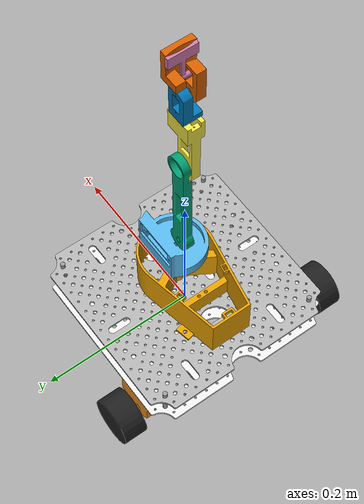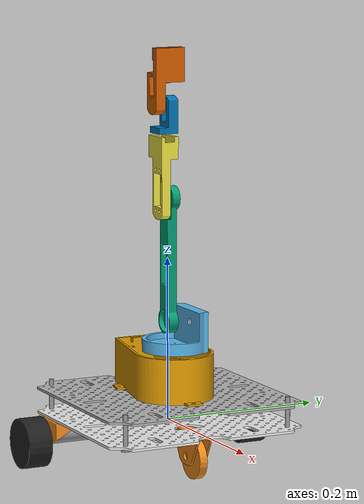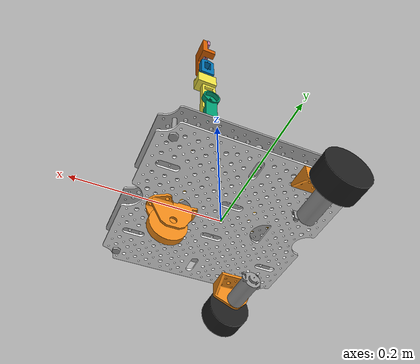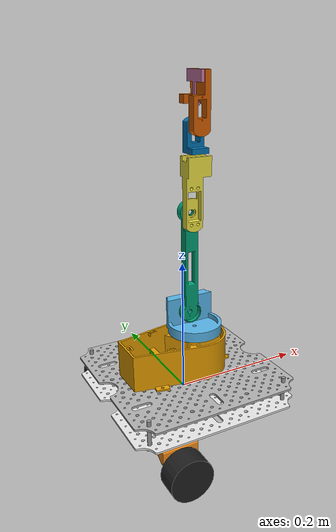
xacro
<?xml version="1.0" encoding="utf-8"?>
<robot name="billy_arm" xmlns:xacro="http://www.ros.org/wiki/xacro">

  <!-- BGN - Include -->
  <xacro:include filename="$(find billy_arm)/config/robot_param.xacro" />
  <xacro:include filename="$(find billy_arm)/config/billy_links_joints.xacro" />
  <!-- END - Include -->

    <!-- Joint, link and color of components -->

    <link name="base_footprint"/>
    <joint name="base_joint" type="fixed">
      <origin xyz="0 0 0" rpy="0 0 0" />
      <parent link="base_footprint"/>
      <child link="base_link"/>
    </joint>

    <link name="odom"/>
    <joint name="odom_joint" type="fixed">
      <origin xyz="0 0 0" rpy="0 0 0" />
      <parent link="odom"/>
      <child link="base_footprint"/>
    </joint>

    <link name="base_link">
      <visual>
        <geometry>
          <mesh scale="0.001 0.001 0.001" filename="package://billy_description/meshes/TurtlebotBilly_New_Stage.stl"/>
        </geometry>
        <origin xyz="0 0 0" rpy="0 0 1.57"/>
      </visual>
      <collision>
        <geometry>
          <mesh scale="0.001 0.001 0.001" filename="package://billy_description/meshes/TurtlebotBilly_New_Stage.stl"/>
        </geometry>
        <origin xyz="0 0 0" rpy="0 0 1.57"/>
      </collision>
      <inertial>
        <origin xyz="0.0 0 0"/>
        <mass value="10.0"/>
        <inertia ixx="0.01" ixy="0.0" ixz="0.0"
                 iyy="0.01" iyz="0.0"
                 izz="0.03"/>
      </inertial>
    </link>
    <gazebo reference="base_link">
      <material>Gazebo/White</material>
    </gazebo>

    <joint name="stand_1_joint" type="fixed">
      <origin xyz="0.108 0.108 -0.005" rpy="0 0 0" />
      <parent link="base_link"/>
      <child link="stand_1_link" />
    </joint>
    <link name="stand_1_link">
      <visual>
        <geometry>
         <mesh scale="0.001 0.001 0.001" filename="package://billy_description/meshes/VisM6x40.stl"/>
        </geometry>
        <origin xyz="0 0 0" rpy="0 0 0" />
      </visual>
      <collision>
        <geometry>
         <mesh scale="0.001 0.001 0.001" filename="package://billy_description/meshes/VisM6x40.stl"/>
        </geometry>
        <origin xyz="0 0 0" rpy="0 0 0" />
      </collision>
    </link>
    <gazebo reference="stand_1_link">
      <material>Gazebo/Grey</material>
    </gazebo>

    <joint name="stand_2_joint" type="fixed">
      <origin xyz="-0.108 0.108 -0.005" rpy="0 0 0" />
      <parent link="base_link"/>
      <child link="stand_2_link" />
    </joint>
    <link name="stand_2_link">
      <visual>
        <geometry>
         <mesh scale="0.001 0.001 0.001" filename="package://billy_description/meshes/VisM6x40.stl"/>
        </geometry>
        <origin xyz="0 0 0" rpy="0 0 0" />
      </visual>
      <collision>
        <geometry>
         <mesh scale="0.001 0.001 0.001" filename="package://billy_description/meshes/VisM6x40.stl"/>
        </geometry>
        <origin xyz="0 0 0" rpy="0 0 0" />
      </collision>
    </link>
    <gazebo reference="stand_2_link">
      <material>Gazebo/Grey</material>
    </gazebo>

    <joint name="stand_3_joint" type="fixed">
      <origin xyz="-0.108 -0.108 -0.005" rpy="0 0 0" />
      <parent link="base_link"/>
      <child link="stand_3_link" />
    </joint>
    <link name="stand_3_link">
      <visual>
        <geometry>
         <mesh scale="0.001 0.001 0.001" filename="package://billy_description/meshes/VisM6x40.stl"/>
        </geometry>
        <origin rpy="0 0 0" xyz="0 0 0.0"/>
      </visual>
      <collision>
        <geometry>
         <mesh scale="0.001 0.001 0.001" filename="package://billy_description/meshes/VisM6x40.stl"/>
        </geometry>
        <origin rpy="0 0 0" xyz="0 0 0.0"/>
      </collision>
    </link>
    <gazebo reference="stand_3_link">
      <material>Gazebo/Grey</material>
    </gazebo>

    <joint name="stand_4_joint" type="fixed">
      <origin xyz="0.108 -0.108 -0.005" rpy="0 0 0" />
      <parent link="base_link"/>
      <child link="stand_4_link" />
    </joint>
    <link name="stand_4_link">
      <visual>
        <geometry>
         <mesh scale="0.001 0.001 0.001" filename="package://billy_description/meshes/VisM6x40.stl"/>
        </geometry>
        <origin rpy="0 0 0" xyz="0 0 0.0"/>
      </visual>
      <collision>
        <geometry>
         <mesh scale="0.001 0.001 0.001" filename="package://billy_description/meshes/VisM6x40.stl"/>
        </geometry>
        <origin rpy="0 0 0" xyz="0 0 0.0"/>
      </collision>
    </link>
    <gazebo reference="stand_4_link">
      <material>Gazebo/Grey</material>
    </gazebo>

    <joint name="second_level_joint" type="fixed">
      <origin xyz="-0.108 -0.108 0.035" rpy="0 0 0" />
      <parent link="stand_1_link"/>
      <child link="second_level_link"/>
    </joint>
    <link name="second_level_link">
      <visual>
        <geometry>
          <mesh scale="0.001 0.001 0.001" filename="package://billy_description/meshes/TurtlebotBilly_New_Stage.stl"/>
        </geometry>
        <origin xyz="0 0 0" rpy="0 0 1.57"/>
      </visual>
      <collision>
        <geometry>
          <mesh scale="0.001 0.001 0.001" filename="package://billy_description/meshes/TurtlebotBilly_New_Stage.stl"/>
        </geometry>
        <origin xyz="0 0 0" rpy="0 0 1.57"/>
      </collision>
    </link>
    <gazebo reference="base_second_link">
      <material>Gazebo/White</material>
    </gazebo>

    <m_link name="${l00}"
            mass="1"
            ixx="17.667" ixy="0.0" ixz="0.0"
            iyy="17.6670" iyz="0.0"
            izz="17.6670"
            origin_rpy="1.5708 0 0" origin_xyz="0 0 0"
            scale_xyz="0.01 0.01 0.01"  pathfile="package://billy_description/meshes/Base_new.stl"/>

    <joint name="second_level_link__${l00}" type="fixed">
      <origin xyz="-0.05 0 0" rpy="0 0 1.57"/>
      <parent link="second_level_link"/>
      <child link="${l00}"/>
    </joint>

    <m_joint name="${l00}__${l01}" type="revolute"
           axis_xyz="0 0 1"
           limit_e="1000" limit_l="-3.14" limit_u="3.14" limit_v="0.5"
           origin_rpy="0 0 0" origin_xyz="0 -0.07 0.06"
           parent="${l00}" child="${l01}"/>

    <transmission name="trans_${l00}__${l01}">
      <type>transmission_interface/SimpleTransmission</type>
      <joint name="${l00}__${l01}">
        <hardwareInterface>hardware_interface/EffortJointInterface</hardwareInterface>
      </joint>
      <actuator name="motor_${l00}__${l01}">
        <hardwareInterface>hardware_interface/EffortJointInterface</hardwareInterface>
        <mechanicalReduction>1</mechanicalReduction>
      </actuator>
    </transmission>

    <m_link name="${l01}"
            mass="0.7633"
            ixx="1.3235" ixy="0.0" ixz="0.0"
            iyy="1.235" iyz="0.0"
            izz="1.3235"
            origin_rpy="1.5708 0 1.5708" origin_xyz="0 0 0"
            scale_xyz="0.01 0.01 0.01"  pathfile="package://billy_description/meshes/Turning_mount.stl"/>

  <m_joint name="${l01}__${l02}" type="revolute"
           axis_xyz="0 0 1"
           limit_e="1000" limit_l="-2.8" limit_u="2.8" limit_v="0.5"
           origin_rpy="1.5708 1.5708 -1.5708" origin_xyz="-0.005 0.01 0.035"
           parent="${l01}" child="${l02}"/>

    <transmission name="trans_${l01}__${l02}">
      <type>transmission_interface/SimpleTransmission</type>
      <joint name="${l01}__${l02}">
        <hardwareInterface>hardware_interface/EffortJointInterface</hardwareInterface>
      </joint>
      <actuator name="motor_${l01}__${l02}">
        <hardwareInterface>hardware_interface/EffortJointInterface</hardwareInterface>*
        <mechanicalReduction>1</mechanicalReduction>
      </actuator>
    </transmission>

    <m_link name="${l02}"
            mass="0.7906"
            ixx="1.2679" ixy="0.0" ixz="0.0"
            iyy="1.2679" iyz="0.0"
            izz="0.0651"
            origin_rpy="0 0 0 " origin_xyz="-0.150 0 0"
            scale_xyz="0.01 0.01 0.01"  pathfile="package://billy_description/meshes/Link1.stl"/>

    <m_joint name="${l02}__${l03}" type="revolute"
           axis_xyz="1 0 0"
           limit_e="100" limit_l="-3.14" limit_u="3.14" limit_v="0.25"
           origin_rpy="1.5708 -1.5708 1.5708" origin_xyz="-0.15 0 0.002"
           parent="${l02}" child="${l03}"/>

    <transmission name="trans_${l02}__${l03}">
      <type>transmission_interface/SimpleTransmission</type>
      <joint name="${l02}__${l03}">
        <hardwareInterface>hardware_interface/EffortJointInterface</hardwareInterface>
      </joint>
      <actuator name="motor_${l02}__${l03}">
        <hardwareInterface>hardware_interface/EffortJointInterface</hardwareInterface>*
        <mechanicalReduction>1</mechanicalReduction>
      </actuator>
    </transmission>

    <m_link name="${l03}"
            mass="0.5"
            ixx="0.2679" ixy="0.0" ixz="0.0"
            iyy="0.2679" iyz="0.0"
            izz="0.0651"
            origin_rpy="0 0 0" origin_xyz="-0.0002 -0.02 -0.07"
            scale_xyz="0.01 0.01 0.01"  pathfile="package://billy_description/meshes/Link3_section_1.stl"/>

    <m_joint name="${l03}__${l04}" type="revolute"
           axis_xyz="0 0 1"
           limit_e="100" limit_l="-3.14" limit_u="3.14" limit_v="0.25"
           origin_rpy="0 0 0" origin_xyz="0 -0.005 -0.075"
           parent="${l03}" child="${l04}"/>

   <transmission name="trans_${l03}__${l04}">
      <type>transmission_interface/SimpleTransmission</type>
      <joint name="${l03}__${l04}">
        <hardwareInterface>hardware_interface/EffortJointInterface</hardwareInterface>
      </joint>
      <actuator name="motor_${l03}__${l04}">
        <hardwareInterface>hardware_interface/EffortJointInterface</hardwareInterface>*
        <mechanicalReduction>1</mechanicalReduction>
      </actuator>
    </transmission>

    <m_link name="${l04}"
            mass="0.5"
            ixx="0.2679" ixy="0.0" ixz="0.0"
            iyy="0.2679" iyz="0.0"
            izz="0.0651"
            origin_rpy="0 0 0" origin_xyz="0.005 0 -0.005"
            scale_xyz="0.01 0.01 0.01"  pathfile="package://billy_description/meshes/Link3_section_2.stl"/>

    <m_joint name="${l04}__${l05}" type="revolute"
           axis_xyz="0 0 1"
           limit_e="100" limit_l="-3.14" limit_u="3.14" limit_v="0.25"
           origin_rpy="0 1.5708 0" origin_xyz="0 0 -0.04"
           parent="${l04}" child="${l05}"/>

   <transmission name="trans_${l04}__${l05}">
      <type>transmission_interface/SimpleTransmission</type>
      <joint name="${l04}__${l05}">
        <hardwareInterface>hardware_interface/EffortJointInterface</hardwareInterface>
      </joint>
      <actuator name="motor_${l04}__${l05}">
        <hardwareInterface>hardware_interface/EffortJointInterface</hardwareInterface>*
        <mechanicalReduction>1</mechanicalReduction>
      </actuator>
    </transmission>

    <m_link name="${l05}"
            mass="0.5"
            ixx="0.2679" ixy="0.0" ixz="0.0"
            iyy="0.2679" iyz="0.0"
            izz="0.0651"
            origin_rpy="0 0 0" origin_xyz="0 0 0.005"
            scale_xyz="0.01 0.01 0.01"  pathfile="package://billy_description/meshes/Link3_section_3.stl"/>

    <gazebo reference="${l05}">
        <mu1>1000</mu1>
        <mu2>1000</mu2>
      <kp>1000000.0</kp>
      <kd>100000.0</kd>
      <slip1>0</slip1>
      <slip2>0</slip2>
      <minDepth>0.001</minDepth>
      <maxVel>0</maxVel>
      <torsional>
          <ode>
              <coefficient>1000</coefficient>
              <slip>0</slip>
          </ode>
      </torsional>
    </gazebo>

    <m_joint name="${l05}__${l06}" type="revolute"
           axis_xyz="0 0 1"
           limit_e="100" limit_l="-3.14" limit_u="3.14" limit_v="0.25"
           origin_rpy="3.1416 0 1.5708" origin_xyz="0.0275 0 0.012"
           parent="${l05}" child="${l06}"/>

   <transmission name="trans_${l05}__${l06}">
      <type>transmission_interface/SimpleTransmission</type>
      <joint name="${l05}__${l06}">
        <hardwareInterface>hardware_interface/EffortJointInterface</hardwareInterface>
      </joint>
      <actuator name="motor_${l05}__${l06}">
        <hardwareInterface>hardware_interface/EffortJointInterface</hardwareInterface>*
        <mechanicalReduction>1</mechanicalReduction>
      </actuator>
    </transmission>

    <m_link name="${l06}"
            mass="0.5"
            ixx="0.2679" ixy="0.0" ixz="0.0"
            iyy="0.2679" iyz="0.0"
            izz="0.0651"
            origin_rpy="0 0 0" origin_xyz="0 0 0"
            scale_xyz="0.01 0.01 0.01"  pathfile="package://billy_description/meshes/End_Effector_Top_Jaw.stl"/>

    <gazebo reference="${l06}">
        <mu1>1000</mu1>
        <mu2>1000</mu2>
      <kp>1000000.0</kp>
      <kd>100000.0</kd>
      <slip1>0</slip1>
      <slip2>0</slip2>
      <minDepth>0.001</minDepth>
      <maxVel>0</maxVel>
      <torsional>
          <ode>
              <coefficient>1000</coefficient>
              <slip>0</slip>
          </ode>
      </torsional>
    </gazebo>

    <joint name="front_wheel_holder_joint" type="fixed">
      <origin xyz="0.073 0 -0.005" rpy="0 0 3.14" />
      <parent link="base_link"/>
      <child link="front_wheel_holder_link" />
    </joint>
    <link name="front_wheel_holder_link">
      <visual>
        <geometry>
         <mesh scale="0.001 0.001 0.001" filename="package://billy_description/meshes/TurtlebotBilly_FrontWheel.stl"/>
        </geometry>
        <origin rpy="0 0 0" xyz="0 0 0.0"/>
      </visual>
      <collision>
        <geometry>
         <mesh scale="0.001 0.001 0.001" filename="package://billy_description/meshes/TurtlebotBilly_FrontWheel.stl"/>
        </geometry>
        <origin rpy="0 0 0" xyz="0 0 0.0"/>
      </collision>
    </link>
    <gazebo reference="front_wheel_holder_link">
      <material>Gazebo/Orange</material>
    </gazebo>

    <joint name="front_wheel_joint" type="fixed">
      <parent link="front_wheel_holder_link"/>
      <child link="front_wheel_link"/>
      <origin xyz="0 0 -0.028" rpy="1.57 0 0"/>
    </joint>
    <link name="front_wheel_link">
      <visual>
        <geometry>
          <cylinder length="0.01" radius="0.025"/>
          <!--sphere radius="0.19"/-->
        </geometry>
        <origin rpy="0 0 0" xyz="0 0 0"/>
      </visual>
      <collision>
        <geometry>
          <cylinder length="0.01" radius="0.025"/>
          <!--sphere radius="0.19"/-->
        </geometry>
        <origin rpy="0 0 0" xyz="0 0 0"/>
      </collision>
      <inertial>
        <mass value="0.4" />
        <origin xyz="0 0 0" />
        <inertia ixx="0.001" ixy="0.0" ixz="0.0"
                 iyy="0.001" iyz="0.0"
                 izz="0.001" />
      </inertial>
    </link>
    <gazebo reference="front_wheel_link">
      <material>Gazebo/Orange</material>
    </gazebo>

    <joint name="wheel_left_holder_joint" type="fixed">
      <origin xyz="-0.118 -0.129 -0.023" rpy="0 0 0" />
      <parent link="base_link"/>
      <child link="wheel_left_holder_link" />
    </joint>
    <link name="wheel_left_holder_link">
      <visual>
        <geometry>
         <mesh scale="0.001 0.001 0.001" filename="package://billy_description/meshes/TurtlebotBilly_Motor_ShieldL_v1.stl"/>
        </geometry>
        <origin xyz="0 0 0" rpy="0 0 0"/>
      </visual>
      <collision>
        <geometry>
         <mesh scale="0.001 0.001 0.001" filename="package://billy_description/meshes/TurtlebotBilly_Motor_ShieldL_v1.stl"/>
        </geometry>
        <origin xyz="0 0 0.0" rpy="0 0 0"/>
      </collision>
    </link>
    <gazebo reference="wheel_left_holder_link">
      <material>Gazebo/Orange</material>
    </gazebo>

    <joint name="motor_left_joint" type="fixed">
      <origin xyz="0.038 0.004 0" rpy="0 0 0" />
      <parent link="wheel_left_holder_link"/>
      <child link="motor_left_link" />
    </joint>
    <link name="motor_left_link">
      <color name="yellow" />
      <visual>
        <geometry>
         <mesh scale="0.001 0.001 0.001" filename="package://billy_description/meshes/TurtlebotBilly_Motor.stl"/>
        </geometry>
        <origin xyz="0 0 0" rpy="0 0 0"/>
      </visual>
      <collision>
        <geometry>
         <mesh scale="0.001 0.001 0.001" filename="package://billy_description/meshes/TurtlebotBilly_Motor.stl"/>
        </geometry>
        <origin xyz="0 0 0.0" rpy="0 0 0"/>
      </collision>
    </link>
    <gazebo reference="motor_left_link">
      <material>Gazebo/Grey</material>
    </gazebo>

    <joint name="wheel_left_joint" type="continuous">
      <parent link="base_link"/>
      <child link="wheel_left_link"/>
      <origin xyz="-0.075 -0.150 -0.03" rpy="-1.57 0 0"/>
      <axis xyz="0 0 1"/>
    </joint>
    <link name="wheel_left_link">
      <visual name="visual">
        <geometry>
          <!-- cylinder length="0.0206" radius="0.0550"/-->
          <cylinder length="0.031" radius="0.031"/>
        </geometry>
        <origin rpy="0.0 0 0" xyz="0 0 0"/>
      </visual>
      <collision>
        <geometry>
         <cylinder length="0.031" radius="0.031"/>
        </geometry>
        <origin rpy="0.0 0 0" xyz="0 0 0"/>
      </collision>
      <inertial>
        <mass value="0.4" />
        <origin xyz="0 0 0" />
        <inertia ixx="0.001" ixy="0.0" ixz="0.0"
                 iyy="0.001" iyz="0.0"
                 izz="0.001" />
      </inertial>
    </link>
    <gazebo reference="wheel_left_link">
      <material>Gazebo/Black</material>
    </gazebo>

    <joint name="wheel_right_holder_joint" type="fixed">
      <origin xyz="-0.080 0.129 -0.023" rpy="0 0 3.14" />
      <parent link="base_link"/>
      <child link="wheel_right_holder_link" />
    </joint>
    <link name="wheel_right_holder_link">
      <color name="yellow" />
      <visual>
        <geometry>
         <mesh scale="0.001 0.001 0.001" filename="package://billy_description/meshes/TurtlebotBilly_Motor_ShieldR_v1.stl"/>
        </geometry>
        <origin xyz="0 0 0" rpy="0 0 0"/>
      </visual>
      <collision>
        <geometry>
         <mesh scale="0.001 0.001 0.001" filename="package://billy_description/meshes/TurtlebotBilly_Motor_ShieldR_v1.stl"/>
        </geometry>
        <origin xyz="0 0 0.0" rpy="0 0 0"/>
      </collision>
    </link>
    <gazebo reference="wheel_right_holder_link">
      <material>Gazebo/Orange</material>
    </gazebo>

    <joint name="motor_right_joint" type="fixed">
      <origin xyz="0 0.004 0" rpy="0 3.14 0" />
      <parent link="wheel_right_holder_link"/>
      <child link="motor_right_link" />
    </joint>
    <link name="motor_right_link">
      <color name="yellow" />
      <visual>
        <geometry>
         <mesh scale="0.001 0.001 0.001" filename="package://billy_description/meshes/TurtlebotBilly_Motor.stl"/>
        </geometry>
        <origin xyz="0 0 0" rpy="0 0 0"/>
      </visual>
      <collision>
        <geometry>
         <mesh scale="0.001 0.001 0.001" filename="package://billy_description/meshes/TurtlebotBilly_Motor.stl"/>
        </geometry>
        <origin xyz="0 0 0.0" rpy="0 0 0"/>
      </collision>
    </link>
    <gazebo reference="motor_right_link">
      <material>Gazebo/Grey</material>
    </gazebo>

    <joint name="wheel_right_joint" type="continuous">
      <parent link="base_link"/>
      <child link="wheel_right_link"/>
      <origin xyz="-0.075 0.150 -0.03" rpy="-1.57 0 0"/>
      <axis xyz="0 0 1"/>
    </joint>
    <link name="wheel_right_link">
      <visual name="visual">
        <geometry>
          <cylinder length="0.031" radius="0.031"/>
        </geometry>
        <origin rpy="0.0 0 0" xyz="0 0 0"/>
      </visual>
      <collision>
        <geometry>
         <cylinder length="0.031" radius="0.031"/>
        </geometry>
        <origin rpy="0.0 0 0" xyz="0 0 0"/>
      </collision>
      <inertial>
        <mass value="0.4" />
        <origin xyz="0 0 0" />
        <inertia ixx="0.001" ixy="0.0" ixz="0.0"
                 iyy="0.001" iyz="0.0"
                 izz="0.001" />
      </inertial>
    </link>
    <gazebo reference="wheel_right_link">
      <material>Gazebo/Black</material>
    </gazebo>

    <!-- Gazebo Pluggins -->

    <gazebo><plugin name="differential_drive_controller" filename="libgazebo_ros_diff_drive.so">
        <legacyMode>false</legacyMode>
        <alwaysOn>true</alwaysOn>
        <rosDebugLevel>na</rosDebugLevel>
        <publishWheelTF>true</publishWheelTF>
        <publishTf>1</publishTf>
        <publishWheelJointState>true</publishWheelJointState>
        <updateRate>100.0</updateRate>
        <leftJoint>wheel_left_joint</leftJoint>
        <rightJoint>wheel_right_joint</rightJoint>
        <wheelSeparation>.03</wheelSeparation>
        <wheelDiameter>0.031</wheelDiameter>
        <wheelAcceleration>1.0</wheelAcceleration>
        <torque>20</torque>
        <wheelTorque>5</wheelTorque>
        <commandTopic>/cmd_vel</commandTopic>
        <odometryTopic>odom</odometryTopic>
        <odometryFrame>odom</odometryFrame>
        <publishOdomTF>true</publishOdomTF>
        <robotBaseFrame>base_footprint</robotBaseFrame>
        <odometrySource>world</odometrySource> <!-- 'encoder' instead of 'world' is also possible -->
        <publishTf>1</publishTf>
      </plugin>
    </gazebo>

    <gazebo reference="camarm_connector_top_link"><sensor type="camera" name="myCam">
      <update_rate>30.0</update_rate>
      <camera name="head">
        <horizontal_fov>1.04</horizontal_fov>
        <image>
          <width>720</width>
          <height>480</height>
          <format>R8G8B8</format>
        </image>
        <clip>
          <near>0.1</near>
          <far>50</far>
        </clip>
      </camera>
      <plugin name="camera_controller" filename="libgazebo_ros_camera.so">
        <alwaysOn>true</alwaysOn>
        <updateRate>0</updateRate>
        <cameraName>camera1</cameraName>
        <imageTopicName>image_raw</imageTopicName>
        <cameraInfoTopicName>camera_info</cameraInfoTopicName>
        <frameName>camera</frameName>
        <hackBaseline>0.07</hackBaseline>
        <distortionK1>0.0</distortionK1>
        <distortionK2>0.0</distortionK2>
        <distortionK3>0.0</distortionK3>
        <distortionT1>0.0</distortionT1>
        <distortionT2>0.0</distortionT2>
      </plugin>
      </sensor>
    </gazebo>

    <gazebo>
      <plugin name="gazebo_ros_control" filename="libgazebo_ros_control.so">
      </plugin>
      <robotNamespace>/billy_camarm</robotNamespace>
      <robotParam>/billy_camarm/robot_description</robotParam>
    </gazebo>

    <gazebo>
      <plugin name="gazebo_ros_control" filename="libgazebo_ros_control.so">
        <robotNamespace>/billy_arm</robotNamespace>
        <robotParam>/billy_arm/robot_description</robotParam>
      </plugin>
    </gazebo>

</robot>

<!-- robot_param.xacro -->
<robot xmlns:xacro="http://www.ros.org/wiki/xacro">

  <xacro:property name="l00" value="robot_arm_base_link" />
  <xacro:property name="l01" value="robot_arm_turning_mount" />
  <xacro:property name="l02" value="robot_arm_link2" />
  <xacro:property name="l03" value="robot_arm_link3" />
  <xacro:property name="l04" value="robot_arm_link4" />
  <xacro:property name="l05" value="robot_arm_link5" />
  <xacro:property name="l06" value="robot_arm_link6" />

</robot>

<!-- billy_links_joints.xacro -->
<robot xmlns:xacro="http://www.ros.org/wiki/xacro">

  <xacro:macro name="m_link" params="name mass ixx ixy ixz iyy iyz izz origin_xyz origin_rpy scale_xyz pathfile">

    <link name="${name}">
    	<inertial>
        <mass value="${mass}" />
        <origin rpy="${origin_rpy}" xyz="${origin_xyz}" />
        <inertia ixx="${ixx}" ixy="${ixy}" ixz="${ixz}" iyy="${iyy}" iyz="${iyz}" izz="${izz}" />
    </inertial>
    <collision>
        <origin rpy="${origin_rpy}" xyz="${origin_xyz}" />
        <geometry>
          <mesh scale="${scale_xyz}" filename="${pathfile}"/>
        </geometry>
    </collision>
    <visual>
        <origin rpy="${origin_rpy}" xyz="${origin_xyz}" />
        <geometry>
          <mesh scale="${scale_xyz}" filename="${pathfile}"/>
        </geometry>
    </visual>
    </link>
  </xacro:macro>

  <xacro:macro name="m_joint" params="name type axis_xyz limit_e limit_l limit_u limit_v origin_rpy origin_xyz parent child">
    <joint name="${name}" type="${type}">
    	<axis xyz="${axis_xyz}"/>
    	<limit effort="${limit_e}" lower="${limit_l}"  upper="${limit_u}"  velocity="${limit_v}" />
        <origin rpy="${origin_rpy}" xyz="${origin_xyz}" />
        <parent link="${parent}"/>
        <child link="${child}"/>
    </joint>

  </xacro:macro>

</robot>
